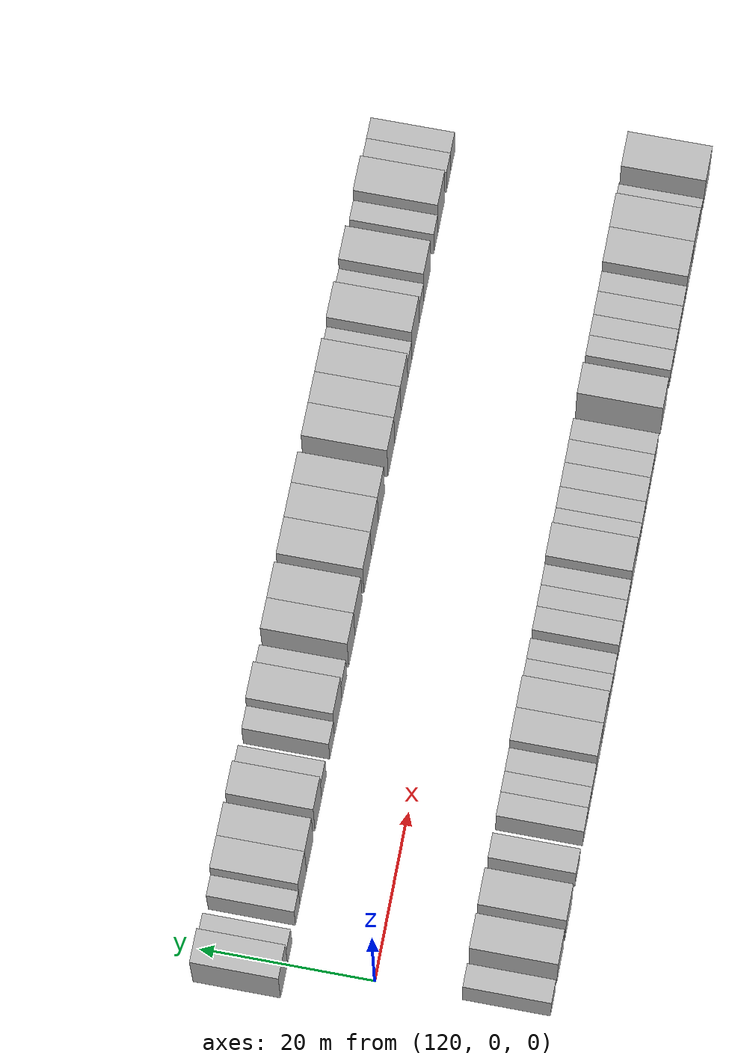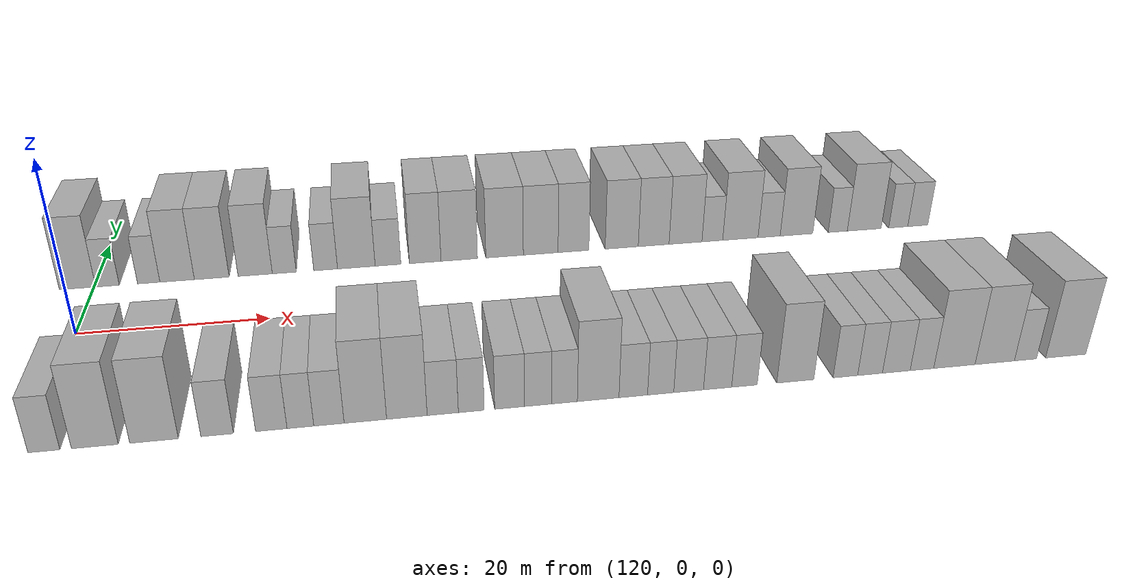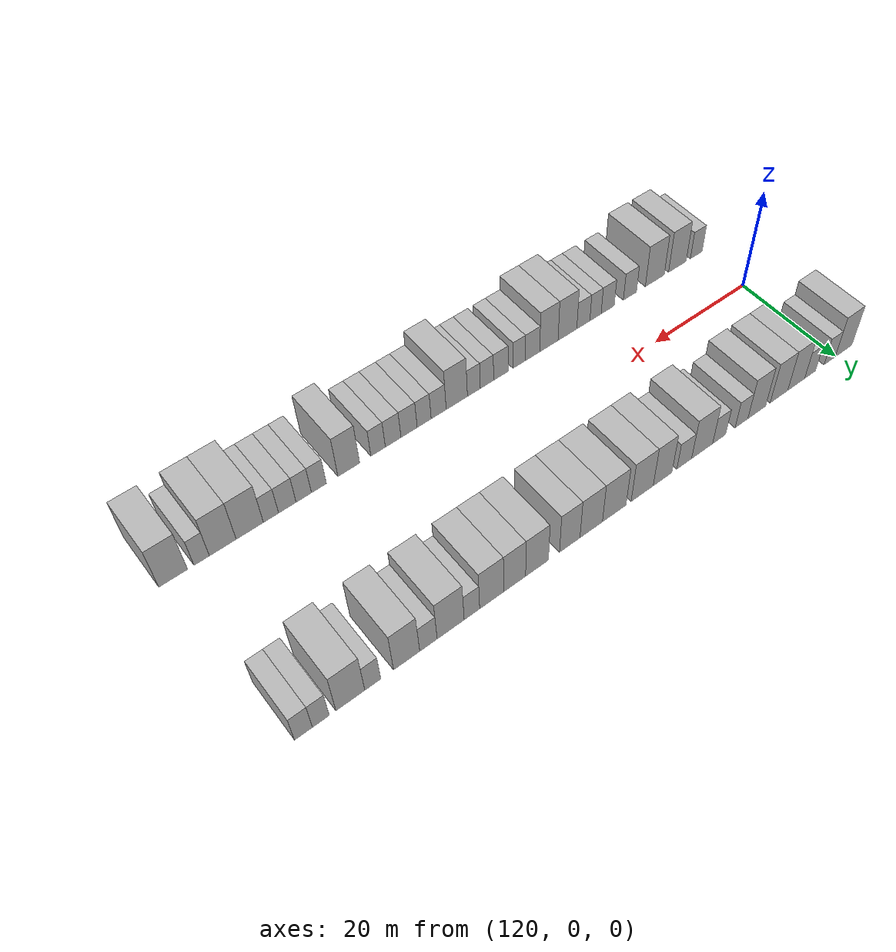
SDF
<sdf version="1.6">
 <world name="default">
  <model name="building_28">
   <static>1</static>
   <pose>118.1713 15.0000 0 0.000000 0.000000 1.570796</pose>
   <link name="link">
    <pose>0 0 4.50 0 0 0</pose>
    <collision name="collision"><geometry><box><size>10.0000 3.9341 9.0000</size></box></geometry></collision>
    <visual name="visual">
     <cast_shadows>0</cast_shadows>
     <geometry><box><size>10.0000 3.9341 9.0000</size></box></geometry>
     <material>
      <script>
       <uri>model://HANNAS_wall/materials/scripts</uri>
       <uri>model://HANNAS_wall/materials/textures</uri>
       <name>vrc/HANNAS_wall</name>
      </script>
     </material>
    </visual>
   </link>
  </model>
  <model name="building_29">
   <static>1</static>
   <pose>121.4217 15.0000 0 0.000000 0.000000 1.570796</pose>
   <link name="link">
    <pose>0 0 3.00 0 0 0</pose>
    <collision name="collision"><geometry><box><size>10.0000 2.5667 6.0000</size></box></geometry></collision>
    <visual name="visual">
     <cast_shadows>0</cast_shadows>
     <geometry><box><size>10.0000 2.5667 6.0000</size></box></geometry>
     <material>
      <script>
       <uri>model://HANNAS_wall/materials/scripts</uri>
       <uri>model://HANNAS_wall/materials/textures</uri>
       <name>vrc/HANNAS_wall</name>
      </script>
     </material>
    </visual>
   </link>
  </model>
  <model name="building_30">
   <static>1</static>
   <pose>125.9357 15.0000 0 0.000000 0.000000 1.570796</pose>
   <link name="link">
    <pose>0 0 3.00 0 0 0</pose>
    <collision name="collision"><geometry><box><size>10.0000 2.4612 6.0000</size></box></geometry></collision>
    <visual name="visual">
     <cast_shadows>0</cast_shadows>
     <geometry><box><size>10.0000 2.4612 6.0000</size></box></geometry>
     <material>
      <script>
       <uri>model://HANNAS_wall/materials/scripts</uri>
       <uri>model://HANNAS_wall/materials/textures</uri>
       <name>vrc/HANNAS_wall</name>
      </script>
     </material>
    </visual>
   </link>
  </model>
  <model name="building_31">
   <static>1</static>
   <pose>129.0759 15.0000 0 0.000000 0.000000 1.570796</pose>
   <link name="link">
    <pose>0 0 4.50 0 0 0</pose>
    <collision name="collision"><geometry><box><size>10.0000 3.8192 9.0000</size></box></geometry></collision>
    <visual name="visual">
     <cast_shadows>0</cast_shadows>
     <geometry><box><size>10.0000 3.8192 9.0000</size></box></geometry>
     <material>
      <script>
       <uri>model://HANNAS_wall/materials/scripts</uri>
       <uri>model://HANNAS_wall/materials/textures</uri>
       <name>vrc/HANNAS_wall</name>
      </script>
     </material>
    </visual>
   </link>
  </model>
  <model name="building_32">
   <static>1</static>
   <pose>132.9292 15.0000 0 0.000000 0.000000 1.570796</pose>
   <link name="link">
    <pose>0 0 4.50 0 0 0</pose>
    <collision name="collision"><geometry><box><size>10.0000 3.8874 9.0000</size></box></geometry></collision>
    <visual name="visual">
     <cast_shadows>0</cast_shadows>
     <geometry><box><size>10.0000 3.8874 9.0000</size></box></geometry>
     <material>
      <script>
       <uri>model://HANNAS_wall/materials/scripts</uri>
       <uri>model://HANNAS_wall/materials/textures</uri>
       <name>vrc/HANNAS_wall</name>
      </script>
     </material>
    </visual>
   </link>
  </model>
  <model name="building_33">
   <static>1</static>
   <pose>137.8055 15.0000 0 0.000000 0.000000 1.570796</pose>
   <link name="link">
    <pose>0 0 4.50 0 0 0</pose>
    <collision name="collision"><geometry><box><size>10.0000 3.8652 9.0000</size></box></geometry></collision>
    <visual name="visual">
     <cast_shadows>0</cast_shadows>
     <geometry><box><size>10.0000 3.8652 9.0000</size></box></geometry>
     <material>
      <script>
       <uri>model://HANNAS_wall/materials/scripts</uri>
       <uri>model://HANNAS_wall/materials/textures</uri>
       <name>vrc/HANNAS_wall</name>
      </script>
     </material>
    </visual>
   </link>
  </model>
  <model name="building_34">
   <static>1</static>
   <pose>141.0988 15.0000 0 0.000000 0.000000 1.570796</pose>
   <link name="link">
    <pose>0 0 3.00 0 0 0</pose>
    <collision name="collision"><geometry><box><size>10.0000 2.7214 6.0000</size></box></geometry></collision>
    <visual name="visual">
     <cast_shadows>0</cast_shadows>
     <geometry><box><size>10.0000 2.7214 6.0000</size></box></geometry>
     <material>
      <script>
       <uri>model://HANNAS_wall/materials/scripts</uri>
       <uri>model://HANNAS_wall/materials/textures</uri>
       <name>vrc/HANNAS_wall</name>
      </script>
     </material>
    </visual>
   </link>
  </model>
  <model name="building_35">
   <static>1</static>
   <pose>145.8240 15.0000 0 0.000000 0.000000 1.570796</pose>
   <link name="link">
    <pose>0 0 3.00 0 0 0</pose>
    <collision name="collision"><geometry><box><size>10.0000 2.7289 6.0000</size></box></geometry></collision>
    <visual name="visual">
     <cast_shadows>0</cast_shadows>
     <geometry><box><size>10.0000 2.7289 6.0000</size></box></geometry>
     <material>
      <script>
       <uri>model://HANNAS_wall/materials/scripts</uri>
       <uri>model://HANNAS_wall/materials/textures</uri>
       <name>vrc/HANNAS_wall</name>
      </script>
     </material>
    </visual>
   </link>
  </model>
  <model name="building_36">
   <static>1</static>
   <pose>149.3611 15.0000 0 0.000000 0.000000 1.570796</pose>
   <link name="link">
    <pose>0 0 4.50 0 0 0</pose>
    <collision name="collision"><geometry><box><size>10.0000 4.3454 9.0000</size></box></geometry></collision>
    <visual name="visual">
     <cast_shadows>0</cast_shadows>
     <geometry><box><size>10.0000 4.3454 9.0000</size></box></geometry>
     <material>
      <script>
       <uri>model://HANNAS_wall/materials/scripts</uri>
       <uri>model://HANNAS_wall/materials/textures</uri>
       <name>vrc/HANNAS_wall</name>
      </script>
     </material>
    </visual>
   </link>
  </model>
  <model name="building_37">
   <static>1</static>
   <pose>153.0323 15.0000 0 0.000000 0.000000 1.570796</pose>
   <link name="link">
    <pose>0 0 3.00 0 0 0</pose>
    <collision name="collision"><geometry><box><size>10.0000 2.9968 6.0000</size></box></geometry></collision>
    <visual name="visual">
     <cast_shadows>0</cast_shadows>
     <geometry><box><size>10.0000 2.9968 6.0000</size></box></geometry>
     <material>
      <script>
       <uri>model://HANNAS_wall/materials/scripts</uri>
       <uri>model://HANNAS_wall/materials/textures</uri>
       <name>vrc/HANNAS_wall</name>
      </script>
     </material>
    </visual>
   </link>
  </model>
  <model name="building_38">
   <static>1</static>
   <pose>157.3889 15.0000 0 0.000000 0.000000 1.570796</pose>
   <link name="link">
    <pose>0 0 4.50 0 0 0</pose>
    <collision name="collision"><geometry><box><size>10.0000 3.7164 9.0000</size></box></geometry></collision>
    <visual name="visual">
     <cast_shadows>0</cast_shadows>
     <geometry><box><size>10.0000 3.7164 9.0000</size></box></geometry>
     <material>
      <script>
       <uri>model://HANNAS_wall/materials/scripts</uri>
       <uri>model://HANNAS_wall/materials/textures</uri>
       <name>vrc/HANNAS_wall</name>
      </script>
     </material>
    </visual>
   </link>
  </model>
  <model name="building_39">
   <static>1</static>
   <pose>161.4057 15.0000 0 0.000000 0.000000 1.570796</pose>
   <link name="link">
    <pose>0 0 4.50 0 0 0</pose>
    <collision name="collision"><geometry><box><size>10.0000 4.3173 9.0000</size></box></geometry></collision>
    <visual name="visual">
     <cast_shadows>0</cast_shadows>
     <geometry><box><size>10.0000 4.3173 9.0000</size></box></geometry>
     <material>
      <script>
       <uri>model://HANNAS_wall/materials/scripts</uri>
       <uri>model://HANNAS_wall/materials/textures</uri>
       <name>vrc/HANNAS_wall</name>
      </script>
     </material>
    </visual>
   </link>
  </model>
  <model name="building_40">
   <static>1</static>
   <pose>166.8113 15.0000 0 0.000000 0.000000 1.570796</pose>
   <link name="link">
    <pose>0 0 4.50 0 0 0</pose>
    <collision name="collision"><geometry><box><size>10.0000 4.4940 9.0000</size></box></geometry></collision>
    <visual name="visual">
     <cast_shadows>0</cast_shadows>
     <geometry><box><size>10.0000 4.4940 9.0000</size></box></geometry>
     <material>
      <script>
       <uri>model://HANNAS_wall/materials/scripts</uri>
       <uri>model://HANNAS_wall/materials/textures</uri>
       <name>vrc/HANNAS_wall</name>
      </script>
     </material>
    </visual>
   </link>
  </model>
  <model name="building_41">
   <static>1</static>
   <pose>171.1600 15.0000 0 0.000000 0.000000 1.570796</pose>
   <link name="link">
    <pose>0 0 4.50 0 0 0</pose>
    <collision name="collision"><geometry><box><size>10.0000 4.2035 9.0000</size></box></geometry></collision>
    <visual name="visual">
     <cast_shadows>0</cast_shadows>
     <geometry><box><size>10.0000 4.2035 9.0000</size></box></geometry>
     <material>
      <script>
       <uri>model://HANNAS_wall/materials/scripts</uri>
       <uri>model://HANNAS_wall/materials/textures</uri>
       <name>vrc/HANNAS_wall</name>
      </script>
     </material>
    </visual>
   </link>
  </model>
  <model name="building_42">
   <static>1</static>
   <pose>175.1367 15.0000 0 0.000000 0.000000 1.570796</pose>
   <link name="link">
    <pose>0 0 4.50 0 0 0</pose>
    <collision name="collision"><geometry><box><size>10.0000 3.7498 9.0000</size></box></geometry></collision>
    <visual name="visual">
     <cast_shadows>0</cast_shadows>
     <geometry><box><size>10.0000 3.7498 9.0000</size></box></geometry>
     <material>
      <script>
       <uri>model://HANNAS_wall/materials/scripts</uri>
       <uri>model://HANNAS_wall/materials/textures</uri>
       <name>vrc/HANNAS_wall</name>
      </script>
     </material>
    </visual>
   </link>
  </model>
  <model name="building_43">
   <static>1</static>
   <pose>181.0527 15.0000 0 0.000000 0.000000 1.570796</pose>
   <link name="link">
    <pose>0 0 4.50 0 0 0</pose>
    <collision name="collision"><geometry><box><size>10.0000 4.0822 9.0000</size></box></geometry></collision>
    <visual name="visual">
     <cast_shadows>0</cast_shadows>
     <geometry><box><size>10.0000 4.0822 9.0000</size></box></geometry>
     <material>
      <script>
       <uri>model://HANNAS_wall/materials/scripts</uri>
       <uri>model://HANNAS_wall/materials/textures</uri>
       <name>vrc/HANNAS_wall</name>
      </script>
     </material>
    </visual>
   </link>
  </model>
  <model name="building_44">
   <static>1</static>
   <pose>185.0109 15.0000 0 0.000000 0.000000 1.570796</pose>
   <link name="link">
    <pose>0 0 4.50 0 0 0</pose>
    <collision name="collision"><geometry><box><size>10.0000 3.8343 9.0000</size></box></geometry></collision>
    <visual name="visual">
     <cast_shadows>0</cast_shadows>
     <geometry><box><size>10.0000 3.8343 9.0000</size></box></geometry>
     <material>
      <script>
       <uri>model://HANNAS_wall/materials/scripts</uri>
       <uri>model://HANNAS_wall/materials/textures</uri>
       <name>vrc/HANNAS_wall</name>
      </script>
     </material>
    </visual>
   </link>
  </model>
  <model name="building_45">
   <static>1</static>
   <pose>188.9912 15.0000 0 0.000000 0.000000 1.570796</pose>
   <link name="link">
    <pose>0 0 4.50 0 0 0</pose>
    <collision name="collision"><geometry><box><size>10.0000 4.1263 9.0000</size></box></geometry></collision>
    <visual name="visual">
     <cast_shadows>0</cast_shadows>
     <geometry><box><size>10.0000 4.1263 9.0000</size></box></geometry>
     <material>
      <script>
       <uri>model://HANNAS_wall/materials/scripts</uri>
       <uri>model://HANNAS_wall/materials/textures</uri>
       <name>vrc/HANNAS_wall</name>
      </script>
     </material>
    </visual>
   </link>
  </model>
  <model name="building_46">
   <static>1</static>
   <pose>192.3655 15.0000 0 0.000000 0.000000 1.570796</pose>
   <link name="link">
    <pose>0 0 3.00 0 0 0</pose>
    <collision name="collision"><geometry><box><size>10.0000 2.6222 6.0000</size></box></geometry></collision>
    <visual name="visual">
     <cast_shadows>0</cast_shadows>
     <geometry><box><size>10.0000 2.6222 6.0000</size></box></geometry>
     <material>
      <script>
       <uri>model://HANNAS_wall/materials/scripts</uri>
       <uri>model://HANNAS_wall/materials/textures</uri>
       <name>vrc/HANNAS_wall</name>
      </script>
     </material>
    </visual>
   </link>
  </model>
  <model name="building_47">
   <static>1</static>
   <pose>195.9223 15.0000 0 0.000000 0.000000 1.570796</pose>
   <link name="link">
    <pose>0 0 4.50 0 0 0</pose>
    <collision name="collision"><geometry><box><size>10.0000 4.4914 9.0000</size></box></geometry></collision>
    <visual name="visual">
     <cast_shadows>0</cast_shadows>
     <geometry><box><size>10.0000 4.4914 9.0000</size></box></geometry>
     <material>
      <script>
       <uri>model://HANNAS_wall/materials/scripts</uri>
       <uri>model://HANNAS_wall/materials/textures</uri>
       <name>vrc/HANNAS_wall</name>
      </script>
     </material>
    </visual>
   </link>
  </model>
  <model name="building_48">
   <static>1</static>
   <pose>199.5818 15.0000 0 0.000000 0.000000 1.570796</pose>
   <link name="link">
    <pose>0 0 3.00 0 0 0</pose>
    <collision name="collision"><geometry><box><size>10.0000 2.8277 6.0000</size></box></geometry></collision>
    <visual name="visual">
     <cast_shadows>0</cast_shadows>
     <geometry><box><size>10.0000 2.8277 6.0000</size></box></geometry>
     <material>
      <script>
       <uri>model://HANNAS_wall/materials/scripts</uri>
       <uri>model://HANNAS_wall/materials/textures</uri>
       <name>vrc/HANNAS_wall</name>
      </script>
     </material>
    </visual>
   </link>
  </model>
  <model name="building_49">
   <static>1</static>
   <pose>203.1002 15.0000 0 0.000000 0.000000 1.570796</pose>
   <link name="link">
    <pose>0 0 4.50 0 0 0</pose>
    <collision name="collision"><geometry><box><size>10.0000 4.2091 9.0000</size></box></geometry></collision>
    <visual name="visual">
     <cast_shadows>0</cast_shadows>
     <geometry><box><size>10.0000 4.2091 9.0000</size></box></geometry>
     <material>
      <script>
       <uri>model://HANNAS_wall/materials/scripts</uri>
       <uri>model://HANNAS_wall/materials/textures</uri>
       <name>vrc/HANNAS_wall</name>
      </script>
     </material>
    </visual>
   </link>
  </model>
  <model name="building_50">
   <static>1</static>
   <pose>208.4512 15.0000 0 0.000000 0.000000 1.570796</pose>
   <link name="link">
    <pose>0 0 3.00 0 0 0</pose>
    <collision name="collision"><geometry><box><size>10.0000 2.4929 6.0000</size></box></geometry></collision>
    <visual name="visual">
     <cast_shadows>0</cast_shadows>
     <geometry><box><size>10.0000 2.4929 6.0000</size></box></geometry>
     <material>
      <script>
       <uri>model://HANNAS_wall/materials/scripts</uri>
       <uri>model://HANNAS_wall/materials/textures</uri>
       <name>vrc/HANNAS_wall</name>
      </script>
     </material>
    </visual>
   </link>
  </model>
  <model name="building_51">
   <static>1</static>
   <pose>211.9176 15.0000 0 0.000000 0.000000 1.570796</pose>
   <link name="link">
    <pose>0 0 4.50 0 0 0</pose>
    <collision name="collision"><geometry><box><size>10.0000 4.4398 9.0000</size></box></geometry></collision>
    <visual name="visual">
     <cast_shadows>0</cast_shadows>
     <geometry><box><size>10.0000 4.4398 9.0000</size></box></geometry>
     <material>
      <script>
       <uri>model://HANNAS_wall/materials/scripts</uri>
       <uri>model://HANNAS_wall/materials/textures</uri>
       <name>vrc/HANNAS_wall</name>
      </script>
     </material>
    </visual>
   </link>
  </model>
  <model name="building_52">
   <static>1</static>
   <pose>216.3968 15.0000 0 0.000000 0.000000 1.570796</pose>
   <link name="link">
    <pose>0 0 3.00 0 0 0</pose>
    <collision name="collision"><geometry><box><size>10.0000 2.5186 6.0000</size></box></geometry></collision>
    <visual name="visual">
     <cast_shadows>0</cast_shadows>
     <geometry><box><size>10.0000 2.5186 6.0000</size></box></geometry>
     <material>
      <script>
       <uri>model://HANNAS_wall/materials/scripts</uri>
       <uri>model://HANNAS_wall/materials/textures</uri>
       <name>vrc/HANNAS_wall</name>
      </script>
     </material>
    </visual>
   </link>
  </model>
  <model name="building_53">
   <static>1</static>
   <pose>218.9856 15.0000 0 0.000000 0.000000 1.570796</pose>
   <link name="link">
    <pose>0 0 3.00 0 0 0</pose>
    <collision name="collision"><geometry><box><size>10.0000 2.6590 6.0000</size></box></geometry></collision>
    <visual name="visual">
     <cast_shadows>0</cast_shadows>
     <geometry><box><size>10.0000 2.6590 6.0000</size></box></geometry>
     <material>
      <script>
       <uri>model://HANNAS_wall/materials/scripts</uri>
       <uri>model://HANNAS_wall/materials/textures</uri>
       <name>vrc/HANNAS_wall</name>
      </script>
     </material>
    </visual>
   </link>
  </model>
  <model name="building_82">
   <static>1</static>
   <pose>121.2041 -15.0000 0 0.000000 0.000000 1.570796</pose>
   <link name="link">
    <pose>0 0 3.00 0 0 0</pose>
    <collision name="collision"><geometry><box><size>10.0000 2.7464 6.0000</size></box></geometry></collision>
    <visual name="visual">
     <cast_shadows>0</cast_shadows>
     <geometry><box><size>10.0000 2.7464 6.0000</size></box></geometry>
     <material>
      <script>
       <uri>model://HANNAS_wall/materials/scripts</uri>
       <uri>model://HANNAS_wall/materials/textures</uri>
       <name>vrc/HANNAS_wall</name>
      </script>
     </material>
    </visual>
   </link>
  </model>
  <model name="building_83">
   <static>1</static>
   <pose>125.6090 -15.0000 0 0.000000 0.000000 1.570796</pose>
   <link name="link">
    <pose>0 0 4.50 0 0 0</pose>
    <collision name="collision"><geometry><box><size>10.0000 4.0635 9.0000</size></box></geometry></collision>
    <visual name="visual">
     <cast_shadows>0</cast_shadows>
     <geometry><box><size>10.0000 4.0635 9.0000</size></box></geometry>
     <material>
      <script>
       <uri>model://HANNAS_wall/materials/scripts</uri>
       <uri>model://HANNAS_wall/materials/textures</uri>
       <name>vrc/HANNAS_wall</name>
      </script>
     </material>
    </visual>
   </link>
  </model>
  <model name="building_84">
   <static>1</static>
   <pose>130.7835 -15.0000 0 0.000000 0.000000 1.570796</pose>
   <link name="link">
    <pose>0 0 4.50 0 0 0</pose>
    <collision name="collision"><geometry><box><size>10.0000 4.2855 9.0000</size></box></geometry></collision>
    <visual name="visual">
     <cast_shadows>0</cast_shadows>
     <geometry><box><size>10.0000 4.2855 9.0000</size></box></geometry>
     <material>
      <script>
       <uri>model://HANNAS_wall/materials/scripts</uri>
       <uri>model://HANNAS_wall/materials/textures</uri>
       <name>vrc/HANNAS_wall</name>
      </script>
     </material>
    </visual>
   </link>
  </model>
  <model name="building_85">
   <static>1</static>
   <pose>136.3800 -15.0000 0 0.000000 0.000000 1.570796</pose>
   <link name="link">
    <pose>0 0 3.00 0 0 0</pose>
    <collision name="collision"><geometry><box><size>10.0000 2.9074 6.0000</size></box></geometry></collision>
    <visual name="visual">
     <cast_shadows>0</cast_shadows>
     <geometry><box><size>10.0000 2.9074 6.0000</size></box></geometry>
     <material>
      <script>
       <uri>model://HANNAS_wall/materials/scripts</uri>
       <uri>model://HANNAS_wall/materials/textures</uri>
       <name>vrc/HANNAS_wall</name>
      </script>
     </material>
    </visual>
   </link>
  </model>
  <model name="building_86">
   <static>1</static>
   <pose>141.2571 -15.0000 0 0.000000 0.000000 1.570796</pose>
   <link name="link">
    <pose>0 0 3.00 0 0 0</pose>
    <collision name="collision"><geometry><box><size>10.0000 2.8470 6.0000</size></box></geometry></collision>
    <visual name="visual">
     <cast_shadows>0</cast_shadows>
     <geometry><box><size>10.0000 2.8470 6.0000</size></box></geometry>
     <material>
      <script>
       <uri>model://HANNAS_wall/materials/scripts</uri>
       <uri>model://HANNAS_wall/materials/textures</uri>
       <name>vrc/HANNAS_wall</name>
      </script>
     </material>
    </visual>
   </link>
  </model>
  <model name="building_87">
   <static>1</static>
   <pose>143.9002 -15.0000 0 0.000000 0.000000 1.570796</pose>
   <link name="link">
    <pose>0 0 3.00 0 0 0</pose>
    <collision name="collision"><geometry><box><size>10.0000 2.4391 6.0000</size></box></geometry></collision>
    <visual name="visual">
     <cast_shadows>0</cast_shadows>
     <geometry><box><size>10.0000 2.4391 6.0000</size></box></geometry>
     <material>
      <script>
       <uri>model://HANNAS_wall/materials/scripts</uri>
       <uri>model://HANNAS_wall/materials/textures</uri>
       <name>vrc/HANNAS_wall</name>
      </script>
     </material>
    </visual>
   </link>
  </model>
  <model name="building_88">
   <static>1</static>
   <pose>146.5135 -15.0000 0 0.000000 0.000000 1.570796</pose>
   <link name="link">
    <pose>0 0 3.00 0 0 0</pose>
    <collision name="collision"><geometry><box><size>10.0000 2.7875 6.0000</size></box></geometry></collision>
    <visual name="visual">
     <cast_shadows>0</cast_shadows>
     <geometry><box><size>10.0000 2.7875 6.0000</size></box></geometry>
     <material>
      <script>
       <uri>model://HANNAS_wall/materials/scripts</uri>
       <uri>model://HANNAS_wall/materials/textures</uri>
       <name>vrc/HANNAS_wall</name>
      </script>
     </material>
    </visual>
   </link>
  </model>
  <model name="building_89">
   <static>1</static>
   <pose>149.8734 -15.0000 0 0.000000 0.000000 1.570796</pose>
   <link name="link">
    <pose>0 0 4.50 0 0 0</pose>
    <collision name="collision"><geometry><box><size>10.0000 3.9322 9.0000</size></box></geometry></collision>
    <visual name="visual">
     <cast_shadows>0</cast_shadows>
     <geometry><box><size>10.0000 3.9322 9.0000</size></box></geometry>
     <material>
      <script>
       <uri>model://HANNAS_wall/materials/scripts</uri>
       <uri>model://HANNAS_wall/materials/textures</uri>
       <name>vrc/HANNAS_wall</name>
      </script>
     </material>
    </visual>
   </link>
  </model>
  <model name="building_90">
   <static>1</static>
   <pose>153.7378 -15.0000 0 0.000000 0.000000 1.570796</pose>
   <link name="link">
    <pose>0 0 4.50 0 0 0</pose>
    <collision name="collision"><geometry><box><size>10.0000 3.7966 9.0000</size></box></geometry></collision>
    <visual name="visual">
     <cast_shadows>0</cast_shadows>
     <geometry><box><size>10.0000 3.7966 9.0000</size></box></geometry>
     <material>
      <script>
       <uri>model://HANNAS_wall/materials/scripts</uri>
       <uri>model://HANNAS_wall/materials/textures</uri>
       <name>vrc/HANNAS_wall</name>
      </script>
     </material>
    </visual>
   </link>
  </model>
  <model name="building_91">
   <static>1</static>
   <pose>157.1085 -15.0000 0 0.000000 0.000000 1.570796</pose>
   <link name="link">
    <pose>0 0 3.00 0 0 0</pose>
    <collision name="collision"><geometry><box><size>10.0000 2.9450 6.0000</size></box></geometry></collision>
    <visual name="visual">
     <cast_shadows>0</cast_shadows>
     <geometry><box><size>10.0000 2.9450 6.0000</size></box></geometry>
     <material>
      <script>
       <uri>model://HANNAS_wall/materials/scripts</uri>
       <uri>model://HANNAS_wall/materials/textures</uri>
       <name>vrc/HANNAS_wall</name>
      </script>
     </material>
    </visual>
   </link>
  </model>
  <model name="building_92">
   <static>1</static>
   <pose>159.8080 -15.0000 0 0.000000 0.000000 1.570796</pose>
   <link name="link">
    <pose>0 0 3.00 0 0 0</pose>
    <collision name="collision"><geometry><box><size>10.0000 2.4539 6.0000</size></box></geometry></collision>
    <visual name="visual">
     <cast_shadows>0</cast_shadows>
     <geometry><box><size>10.0000 2.4539 6.0000</size></box></geometry>
     <material>
      <script>
       <uri>model://HANNAS_wall/materials/scripts</uri>
       <uri>model://HANNAS_wall/materials/textures</uri>
       <name>vrc/HANNAS_wall</name>
      </script>
     </material>
    </visual>
   </link>
  </model>
  <model name="building_93">
   <static>1</static>
   <pose>163.4706 -15.0000 0 0.000000 0.000000 1.570796</pose>
   <link name="link">
    <pose>0 0 3.00 0 0 0</pose>
    <collision name="collision"><geometry><box><size>10.0000 2.8714 6.0000</size></box></geometry></collision>
    <visual name="visual">
     <cast_shadows>0</cast_shadows>
     <geometry><box><size>10.0000 2.8714 6.0000</size></box></geometry>
     <material>
      <script>
       <uri>model://HANNAS_wall/materials/scripts</uri>
       <uri>model://HANNAS_wall/materials/textures</uri>
       <name>vrc/HANNAS_wall</name>
      </script>
     </material>
    </visual>
   </link>
  </model>
  <model name="building_94">
   <static>1</static>
   <pose>166.2143 -15.0000 0 0.000000 0.000000 1.570796</pose>
   <link name="link">
    <pose>0 0 3.00 0 0 0</pose>
    <collision name="collision"><geometry><box><size>10.0000 2.6159 6.0000</size></box></geometry></collision>
    <visual name="visual">
     <cast_shadows>0</cast_shadows>
     <geometry><box><size>10.0000 2.6159 6.0000</size></box></geometry>
     <material>
      <script>
       <uri>model://HANNAS_wall/materials/scripts</uri>
       <uri>model://HANNAS_wall/materials/textures</uri>
       <name>vrc/HANNAS_wall</name>
      </script>
     </material>
    </visual>
   </link>
  </model>
  <model name="building_95">
   <static>1</static>
   <pose>168.7705 -15.0000 0 0.000000 0.000000 1.570796</pose>
   <link name="link">
    <pose>0 0 3.00 0 0 0</pose>
    <collision name="collision"><geometry><box><size>10.0000 2.4964 6.0000</size></box></geometry></collision>
    <visual name="visual">
     <cast_shadows>0</cast_shadows>
     <geometry><box><size>10.0000 2.4964 6.0000</size></box></geometry>
     <material>
      <script>
       <uri>model://HANNAS_wall/materials/scripts</uri>
       <uri>model://HANNAS_wall/materials/textures</uri>
       <name>vrc/HANNAS_wall</name>
      </script>
     </material>
    </visual>
   </link>
  </model>
  <model name="building_96">
   <static>1</static>
   <pose>172.0586 -15.0000 0 0.000000 0.000000 1.570796</pose>
   <link name="link">
    <pose>0 0 4.50 0 0 0</pose>
    <collision name="collision"><geometry><box><size>10.0000 4.0798 9.0000</size></box></geometry></collision>
    <visual name="visual">
     <cast_shadows>0</cast_shadows>
     <geometry><box><size>10.0000 4.0798 9.0000</size></box></geometry>
     <material>
      <script>
       <uri>model://HANNAS_wall/materials/scripts</uri>
       <uri>model://HANNAS_wall/materials/textures</uri>
       <name>vrc/HANNAS_wall</name>
      </script>
     </material>
    </visual>
   </link>
  </model>
  <model name="building_97">
   <static>1</static>
   <pose>175.5126 -15.0000 0 0.000000 0.000000 1.570796</pose>
   <link name="link">
    <pose>0 0 3.00 0 0 0</pose>
    <collision name="collision"><geometry><box><size>10.0000 2.8283 6.0000</size></box></geometry></collision>
    <visual name="visual">
     <cast_shadows>0</cast_shadows>
     <geometry><box><size>10.0000 2.8283 6.0000</size></box></geometry>
     <material>
      <script>
       <uri>model://HANNAS_wall/materials/scripts</uri>
       <uri>model://HANNAS_wall/materials/textures</uri>
       <name>vrc/HANNAS_wall</name>
      </script>
     </material>
    </visual>
   </link>
  </model>
  <model name="building_98">
   <static>1</static>
   <pose>178.2301 -15.0000 0 0.000000 0.000000 1.570796</pose>
   <link name="link">
    <pose>0 0 3.00 0 0 0</pose>
    <collision name="collision"><geometry><box><size>10.0000 2.6067 6.0000</size></box></geometry></collision>
    <visual name="visual">
     <cast_shadows>0</cast_shadows>
     <geometry><box><size>10.0000 2.6067 6.0000</size></box></geometry>
     <material>
      <script>
       <uri>model://HANNAS_wall/materials/scripts</uri>
       <uri>model://HANNAS_wall/materials/textures</uri>
       <name>vrc/HANNAS_wall</name>
      </script>
     </material>
    </visual>
   </link>
  </model>
  <model name="building_99">
   <static>1</static>
   <pose>181.0255 -15.0000 0 0.000000 0.000000 1.570796</pose>
   <link name="link">
    <pose>0 0 3.00 0 0 0</pose>
    <collision name="collision"><geometry><box><size>10.0000 2.9841 6.0000</size></box></geometry></collision>
    <visual name="visual">
     <cast_shadows>0</cast_shadows>
     <geometry><box><size>10.0000 2.9841 6.0000</size></box></geometry>
     <material>
      <script>
       <uri>model://HANNAS_wall/materials/scripts</uri>
       <uri>model://HANNAS_wall/materials/textures</uri>
       <name>vrc/HANNAS_wall</name>
      </script>
     </material>
    </visual>
   </link>
  </model>
  <model name="building_100">
   <static>1</static>
   <pose>183.9412 -15.0000 0 0.000000 0.000000 1.570796</pose>
   <link name="link">
    <pose>0 0 3.00 0 0 0</pose>
    <collision name="collision"><geometry><box><size>10.0000 2.8474 6.0000</size></box></geometry></collision>
    <visual name="visual">
     <cast_shadows>0</cast_shadows>
     <geometry><box><size>10.0000 2.8474 6.0000</size></box></geometry>
     <material>
      <script>
       <uri>model://HANNAS_wall/materials/scripts</uri>
       <uri>model://HANNAS_wall/materials/textures</uri>
       <name>vrc/HANNAS_wall</name>
      </script>
     </material>
    </visual>
   </link>
  </model>
  <model name="building_101">
   <static>1</static>
   <pose>186.6650 -15.0000 0 0.000000 0.000000 1.570796</pose>
   <link name="link">
    <pose>0 0 3.00 0 0 0</pose>
    <collision name="collision"><geometry><box><size>10.0000 2.6002 6.0000</size></box></geometry></collision>
    <visual name="visual">
     <cast_shadows>0</cast_shadows>
     <geometry><box><size>10.0000 2.6002 6.0000</size></box></geometry>
     <material>
      <script>
       <uri>model://HANNAS_wall/materials/scripts</uri>
       <uri>model://HANNAS_wall/materials/textures</uri>
       <name>vrc/HANNAS_wall</name>
      </script>
     </material>
    </visual>
   </link>
  </model>
  <model name="building_102">
   <static>1</static>
   <pose>191.8756 -15.0000 0 0.000000 0.000000 1.570796</pose>
   <link name="link">
    <pose>0 0 4.50 0 0 0</pose>
    <collision name="collision"><geometry><box><size>10.0000 3.8209 9.0000</size></box></geometry></collision>
    <visual name="visual">
     <cast_shadows>0</cast_shadows>
     <geometry><box><size>10.0000 3.8209 9.0000</size></box></geometry>
     <material>
      <script>
       <uri>model://HANNAS_wall/materials/scripts</uri>
       <uri>model://HANNAS_wall/materials/textures</uri>
       <name>vrc/HANNAS_wall</name>
      </script>
     </material>
    </visual>
   </link>
  </model>
  <model name="building_103">
   <static>1</static>
   <pose>197.0696 -15.0000 0 0.000000 0.000000 1.570796</pose>
   <link name="link">
    <pose>0 0 3.00 0 0 0</pose>
    <collision name="collision"><geometry><box><size>10.0000 2.5673 6.0000</size></box></geometry></collision>
    <visual name="visual">
     <cast_shadows>0</cast_shadows>
     <geometry><box><size>10.0000 2.5673 6.0000</size></box></geometry>
     <material>
      <script>
       <uri>model://HANNAS_wall/materials/scripts</uri>
       <uri>model://HANNAS_wall/materials/textures</uri>
       <name>vrc/HANNAS_wall</name>
      </script>
     </material>
    </visual>
   </link>
  </model>
  <model name="building_104">
   <static>1</static>
   <pose>199.6543 -15.0000 0 0.000000 0.000000 1.570796</pose>
   <link name="link">
    <pose>0 0 3.00 0 0 0</pose>
    <collision name="collision"><geometry><box><size>10.0000 2.6021 6.0000</size></box></geometry></collision>
    <visual name="visual">
     <cast_shadows>0</cast_shadows>
     <geometry><box><size>10.0000 2.6021 6.0000</size></box></geometry>
     <material>
      <script>
       <uri>model://HANNAS_wall/materials/scripts</uri>
       <uri>model://HANNAS_wall/materials/textures</uri>
       <name>vrc/HANNAS_wall</name>
      </script>
     </material>
    </visual>
   </link>
  </model>
  <model name="building_105">
   <static>1</static>
   <pose>202.4194 -15.0000 0 0.000000 0.000000 1.570796</pose>
   <link name="link">
    <pose>0 0 3.00 0 0 0</pose>
    <collision name="collision"><geometry><box><size>10.0000 2.9281 6.0000</size></box></geometry></collision>
    <visual name="visual">
     <cast_shadows>0</cast_shadows>
     <geometry><box><size>10.0000 2.9281 6.0000</size></box></geometry>
     <material>
      <script>
       <uri>model://HANNAS_wall/materials/scripts</uri>
       <uri>model://HANNAS_wall/materials/textures</uri>
       <name>vrc/HANNAS_wall</name>
      </script>
     </material>
    </visual>
   </link>
  </model>
  <model name="building_106">
   <static>1</static>
   <pose>205.1393 -15.0000 0 0.000000 0.000000 1.570796</pose>
   <link name="link">
    <pose>0 0 3.00 0 0 0</pose>
    <collision name="collision"><geometry><box><size>10.0000 2.5116 6.0000</size></box></geometry></collision>
    <visual name="visual">
     <cast_shadows>0</cast_shadows>
     <geometry><box><size>10.0000 2.5116 6.0000</size></box></geometry>
     <material>
      <script>
       <uri>model://HANNAS_wall/materials/scripts</uri>
       <uri>model://HANNAS_wall/materials/textures</uri>
       <name>vrc/HANNAS_wall</name>
      </script>
     </material>
    </visual>
   </link>
  </model>
  <model name="building_107">
   <static>1</static>
   <pose>208.6147 -15.0000 0 0.000000 0.000000 1.570796</pose>
   <link name="link">
    <pose>0 0 4.50 0 0 0</pose>
    <collision name="collision"><geometry><box><size>10.0000 4.4392 9.0000</size></box></geometry></collision>
    <visual name="visual">
     <cast_shadows>0</cast_shadows>
     <geometry><box><size>10.0000 4.4392 9.0000</size></box></geometry>
     <material>
      <script>
       <uri>model://HANNAS_wall/materials/scripts</uri>
       <uri>model://HANNAS_wall/materials/textures</uri>
       <name>vrc/HANNAS_wall</name>
      </script>
     </material>
    </visual>
   </link>
  </model>
  <model name="building_108">
   <static>1</static>
   <pose>212.9684 -15.0000 0 0.000000 0.000000 1.570796</pose>
   <link name="link">
    <pose>0 0 4.50 0 0 0</pose>
    <collision name="collision"><geometry><box><size>10.0000 4.2681 9.0000</size></box></geometry></collision>
    <visual name="visual">
     <cast_shadows>0</cast_shadows>
     <geometry><box><size>10.0000 4.2681 9.0000</size></box></geometry>
     <material>
      <script>
       <uri>model://HANNAS_wall/materials/scripts</uri>
       <uri>model://HANNAS_wall/materials/textures</uri>
       <name>vrc/HANNAS_wall</name>
      </script>
     </material>
    </visual>
   </link>
  </model>
  <model name="building_109">
   <static>1</static>
   <pose>216.3117 -15.0000 0 0.000000 0.000000 1.570796</pose>
   <link name="link">
    <pose>0 0 3.00 0 0 0</pose>
    <collision name="collision"><geometry><box><size>10.0000 2.4185 6.0000</size></box></geometry></collision>
    <visual name="visual">
     <cast_shadows>0</cast_shadows>
     <geometry><box><size>10.0000 2.4185 6.0000</size></box></geometry>
     <material>
      <script>
       <uri>model://HANNAS_wall/materials/scripts</uri>
       <uri>model://HANNAS_wall/materials/textures</uri>
       <name>vrc/HANNAS_wall</name>
      </script>
     </material>
    </visual>
   </link>
  </model>
  <model name="building_110">
   <static>1</static>
   <pose>220.7391 -15.0000 0 0.000000 0.000000 1.570796</pose>
   <link name="link">
    <pose>0 0 4.50 0 0 0</pose>
    <collision name="collision"><geometry><box><size>10.0000 4.4363 9.0000</size></box></geometry></collision>
    <visual name="visual">
     <cast_shadows>0</cast_shadows>
     <geometry><box><size>10.0000 4.4363 9.0000</size></box></geometry>
     <material>
      <script>
       <uri>model://HANNAS_wall/materials/scripts</uri>
       <uri>model://HANNAS_wall/materials/textures</uri>
       <name>vrc/HANNAS_wall</name>
      </script>
     </material>
    </visual>
   </link>
  </model>
 </world>
</sdf>
